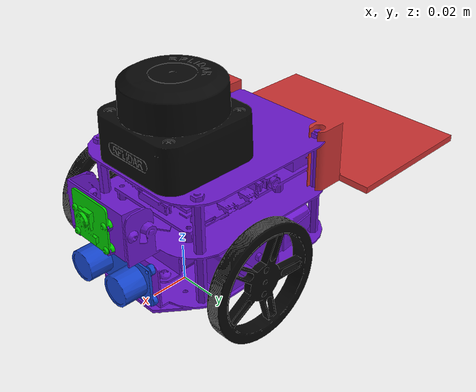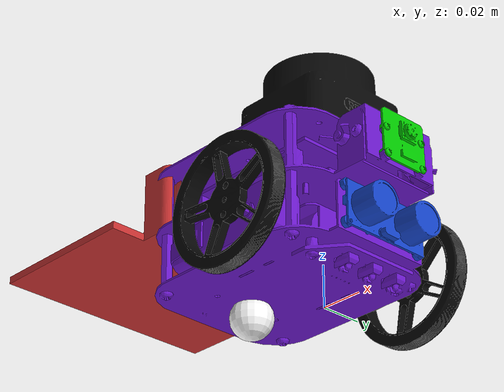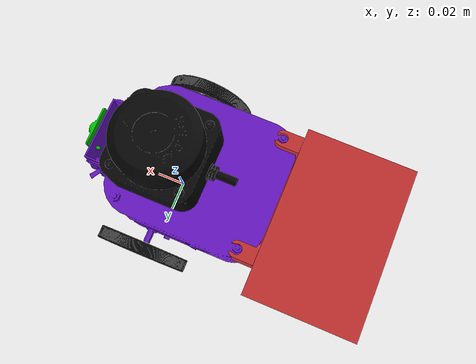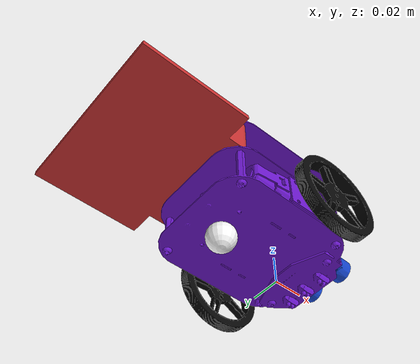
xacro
<?xml version="1.0"?>
<robot name="pinky" xmlns:xacro="http://www.ros.org/wiki/xacro">

    <xacro:include filename="robot_core.xacro"/>

    <xacro:include filename="lidar.xacro" />
    <xacro:include filename="camera.xacro"/>
    <xacro:include filename="imu.xacro"/>

    <xacro:include filename="robot_gazebo.xacro"/>
    <xacro:include filename="gazebo_control.xacro"/>

</robot>

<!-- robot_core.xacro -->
<robot name="pinky" xmlns:xacro="http://www.ros.org/wiki/xacro">

    <!-- Namespace parameter for multi-robot support -->
    <xacro:arg name="namespace" default=""/>
    <xacro:property name="ns" value="$(arg namespace)"/>
    <xacro:property name="ns_prefix" value="${ns + '/' if ns != '' else ''}"/>

    <xacro:property name="wheel_separation" value="0.11"/>
    <xacro:property name="wheel_diameter" value="0.06"/>
    <xacro:include filename="inertial_macros.xacro"/>

    <xacro:property name="chassis_length" value="0.10"/>
    <xacro:property name="chassis_width" value="0.08"/>
    <xacro:property name="chassis_height" value="0.06"/>
    <xacro:property name="chassis_mass" value="1.0"/>
    <xacro:property name="wheel_radius" value="0.03"/>
    <xacro:property name="wheel_thickness" value="0.014"/>
    <xacro:property name="wheel_mass" value="0.05"/>
    <xacro:property name="caster_wheel_radius" value="0.01"/>
    <xacro:property name="caster_wheel_mass" value="0.7"/>

    <material name="white">
        <color rgba="1 1 1 1" />
    </material>

    <link name="${ns_prefix}base_footprint"/>

    <joint name="base_link_fixed_joint" type="fixed">
        <parent link="${ns_prefix}base_footprint"/>
        <child link="${ns_prefix}base_link"/>
        <origin xyz="0 0 ${wheel_diameter/2}" rpy="0 0 0"/>
    </joint>

	<link name="${ns_prefix}base_link"/>

     <joint name="chassis_fixed_joint" type="fixed">
        <parent link="${ns_prefix}base_link"/>
        <child link="${ns_prefix}chassis"/>
        <origin xyz="0 0 0" rpy="0 0 0"/>
    </joint>

	<link name="${ns_prefix}chassis">
		<visual>
            <origin xyz="0 0 0" rpy="0 0 0"/>
            <geometry>
                <mesh filename="package://pinky_description/meshes/visual/base_link.dae" scale="1 1 1"/>
            </geometry>
        </visual>
        <collision>
            <origin xyz="-0.01 0 0.01" rpy="0 0 0"/>
            <geometry>
                <box size="${chassis_length} ${chassis_width} ${chassis_height}"/>
            </geometry>
        </collision>
        <xacro:inertial_box mass="${chassis_mass}" x="${chassis_length}" y="${chassis_width}" z="${chassis_height}">
            <origin xyz="-0.01 0 0.01" rpy="0 0 0"/>
        </xacro:inertial_box>
	</link>

    <joint name="caster_fixed_joint" type="fixed">
        <parent link="${ns_prefix}chassis"/>
        <child link="${ns_prefix}caster"/>
        <origin xyz="-0.044 0 -0.02" rpy="0 0 0"/>
    </joint>

	<link name="${ns_prefix}caster">
      <visual>
            <origin xyz="0 0 0" rpy="0 0 0"/>
            <geometry>
                <sphere radius="${caster_wheel_radius}"/>
            </geometry>
            <material name="white"/>
        </visual>
        <collision>
            <origin xyz="0 0 0" rpy="0 0 0"/>
            <geometry>
                <sphere radius="${caster_wheel_radius}"/>
            </geometry>
        </collision>
        <xacro:inertial_sphere mass="${caster_wheel_mass}" radius="${caster_wheel_radius}">
            <origin xyz="0 0 0" rpy="0 0 0"/>
        </xacro:inertial_sphere>
    </link>

    <joint name="left_wheel_joint" type="continuous">
        <parent link="${ns_prefix}base_link"/>
        <child link="${ns_prefix}left_wheel"/>
        <origin xyz="0 ${wheel_separation/2} 0" rpy="-${pi/2} 0 0"/>
        <axis xyz="0 0 1"/>
    </joint>

    <link name="${ns_prefix}left_wheel">
        <visual>
            <origin xyz="0 0 0" rpy="0 0 0"/>
            <geometry>
                <mesh filename="package://pinky_description/meshes/visual/wheel.dae" scale="1 1 1"/>
            </geometry>
        </visual>
        <collision>
            <origin xyz="0 0 0" rpy="0 0 0"/>
            <geometry>
                <cylinder radius="${wheel_radius}" length="${wheel_thickness}"/>
            </geometry>
        </collision>
        <xacro:inertial_cylinder mass="${wheel_mass}" length="${wheel_thickness}" radius="${wheel_radius}">
            <origin xyz="0 0 0" rpy="0 0 0"/>
        </xacro:inertial_cylinder>
    </link>

    <joint name="right_wheel_joint" type="continuous">
        <parent link="${ns_prefix}base_link"/>
        <child link="${ns_prefix}right_wheel"/>
        <origin xyz="0 ${-1 * wheel_separation/2} 0" rpy="${pi/2} 0 0"/>
        <axis xyz="0 0 -1"/>
    </joint>

    <link name="${ns_prefix}right_wheel">
        <visual>
            <origin xyz="0 0 0" rpy="0 0 0"/>
            <geometry>
                <mesh filename="package://pinky_description/meshes/visual/wheel.dae" scale="1 1 1"/>
            </geometry>
        </visual>
        <collision>
            <origin xyz="0 0 0" rpy="0 0 0"/>
            <geometry>
                <cylinder radius="${wheel_radius}" length="${wheel_thickness}"/>
            </geometry>
        </collision>
        <xacro:inertial_cylinder mass="${wheel_mass}" length="${wheel_thickness}" radius="${wheel_radius}">
            <origin xyz="0 0 0" rpy="0 0 0"/>
        </xacro:inertial_cylinder>
    </link>

    <link name="${ns_prefix}ul_sensor_mount">
        <visual>
            <origin xyz="0 0 0" rpy="0 0 0"/>
            <geometry>
                <mesh filename="package://pinky_description/meshes/visual/ul_sensor.dae" scale="1 1 1"/>
            </geometry>
        </visual>
        <collision>
            <origin xyz="0 0 0" rpy="0 0 0"/>
            <geometry>
                <mesh filename="package://pinky_description/meshes/collision/ul_sensor.stl" scale="1 1 1"/>
            </geometry>
        </collision>
        <inertial>
            <origin xyz="0.005 0 0.013" rpy="0 0 0"/>
            <mass value="0.050000"/>
            <inertia ixx="0.000005" ixy="0" ixz="-0.000001" iyy="0.000004" iyz="0" izz="0.000003"/>
        </inertial>
    </link>

    <joint name="ul_sensor_mount_fixed_joint" type="fixed">
        <parent link="${ns_prefix}chassis"/>
        <child link="${ns_prefix}ul_sensor_mount"/>
        <origin xyz="0.038 -0.002 -0.0035" rpy="0 0 0"/>
    </joint>

    <link name="${ns_prefix}ul_sensor_link"/>

    <joint name="ul_sensor_link_fixed_joint" type="fixed">
        <parent link="${ns_prefix}ul_sensor_mount"/>
        <child link="${ns_prefix}ul_sensor_link"/>
        <origin xyz="0.01 0 0" rpy="0 0 0"/>
    </joint>

    <link name="${ns_prefix}front_camera_mount">
        <visual>
            <origin xyz="0 0 0" rpy="0 0 0"/>
            <geometry>
                <mesh filename="package://pinky_description/meshes/visual/camera.dae" scale="1 1 1"/>
            </geometry>
        </visual>
        <collision>
            <origin xyz="0 0 0" rpy="0 0 0"/>
            <geometry>
                <mesh filename="package://pinky_description/meshes/collision/camera.stl" scale="1 1 1"/>
            </geometry>
        </collision>
        <inertial>
            <origin xyz="0.005 0 0.013" rpy="0 0 0"/>
            <mass value="0.050000"/>
            <inertia ixx="0.000005" ixy="0" ixz="-0.000001" iyy="0.000004" iyz="0" izz="0.000003"/>
        </inertial>
    </link>

    <joint name="front_camera_mount_fixed_joint" type="fixed">
        <parent link="${ns_prefix}chassis"/>
        <child link="${ns_prefix}front_camera_mount"/>
        <origin xyz="0.05 -0.001 0.028" rpy="0 0 0"/>
    </joint>

    <link name="${ns_prefix}camera_link"/>

    <joint name="camera_link_fixed_joint" type="fixed">
        <parent link="${ns_prefix}front_camera_mount"/>
        <child link="${ns_prefix}camera_link"/>
        <origin xyz="0.001 0 0.003" rpy="-${pi/2} 0 -${pi/2}"/>
    </joint>

    <link name="${ns_prefix}lidar_lidar_mount">
        <visual>
            <origin xyz="0 0 0" rpy="0 0 0"/>
            <geometry>
                <mesh filename="package://pinky_description/meshes/visual/lidar.dae" scale="1 1 1"/>
            </geometry>
        </visual>
        <collision>
            <origin xyz="0 0 0" rpy="0 0 0"/>
            <geometry>
                <mesh filename="package://pinky_description/meshes/collision/lidar.stl" scale="1 1 1"/>
            </geometry>
        </collision>
        <inertial>
            <origin xyz="0.007 0 0.025" rpy="0 0 0"/>
            <mass value="0.110"/>
            <inertia ixx="0.000058" ixy="0" ixz="0.000005" iyy="0.000099" iyz="0" izz="0.000103"/>
        </inertial>
    </link>

    <joint name="lidar_mount_fixed_joint" type="fixed">
        <parent link="${ns_prefix}chassis"/>
        <child link="${ns_prefix}lidar_lidar_mount"/>
        <origin xyz="0 0 0.042" rpy="0 0 0"/>
    </joint>

    <link name="${ns_prefix}laser_link"/>

    <joint name="laser_link_fixed_joint" type="fixed">
        <parent link="${ns_prefix}lidar_lidar_mount"/>
        <child link="${ns_prefix}laser_link"/>
        <origin xyz="0.0 0 0.03" rpy="0 0 ${pi}"/>
    </joint>

    <link name="${ns_prefix}imu_link"/>

    <joint name="imu_link_joint" type="fixed">
        <parent link="${ns_prefix}chassis"/>
        <child link="${ns_prefix}imu_link"/>
        <origin xyz="0 0 0.03" rpy="0 0 0"/>
    </joint>

    <joint name="pinky_bag_fixed_joint" type="fixed">
        <parent link="${ns_prefix}chassis"/>
        <child link="${ns_prefix}pinky_bag"/>
        <!-- chassis 기준 뒤쪽으로 0.25m, 높이 0.05m 정도 -->
        <origin xyz="-0.1085 0 0.018" rpy="0 0 0"/>
    </joint>
    <link name="${ns_prefix}pinky_bag">
        <visual>
            <origin xyz="0.0535 0.0575 -0.0035" rpy="0 0 3.14159"/>
            <geometry>
                <mesh filename="package://pinky_description/meshes/visual/pinky_bag.stl" scale="0.001 0.001 0.001"/>
            </geometry>
            <material name="pinky_bag_material">
                <color rgba="0.8 0.2 0.2 1"/>
            </material>
        </visual>
        <collision>
            <origin xyz="0.0535 0.0575 -0.0035" rpy="0 0 3.14159"/>
            <geometry>
                <mesh filename="package://pinky_description/meshes/collision/pinky_bag.stl" scale="0.001 0.001 0.001"/>
            </geometry>
        </collision>
        <inertial>
            <mass value="0.05"/> <!-- kg 단위, 대략 설정 -->
            <origin xyz="0 0 0" rpy="0 0 0"/>
            <inertia ixx="0.001" iyy="0.001" izz="0.001"
                    ixy="0.0" ixz="0.0" iyz="0.0"/>
        </inertial>
    </link>
</robot>
